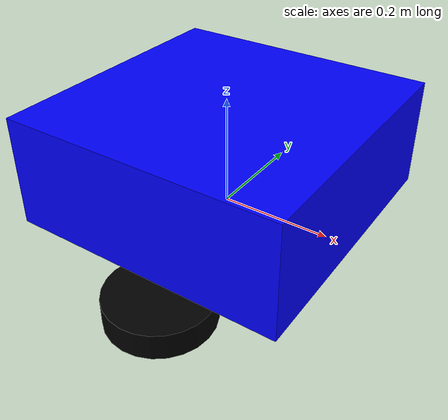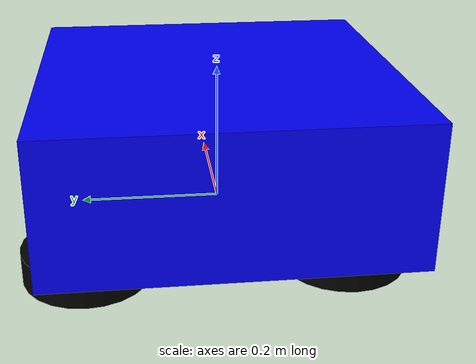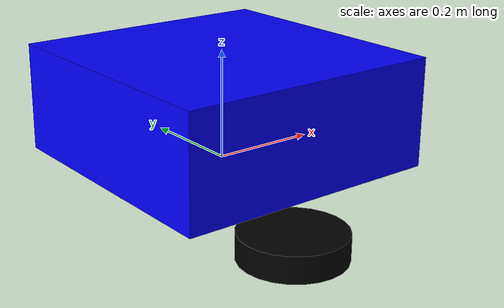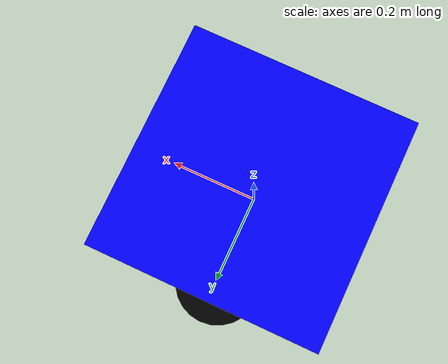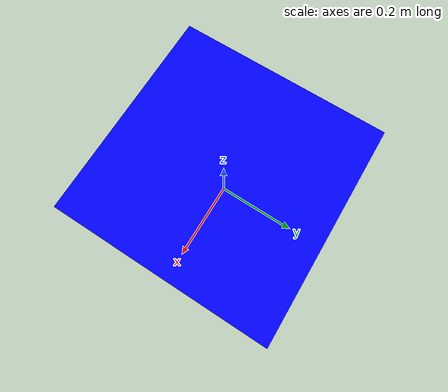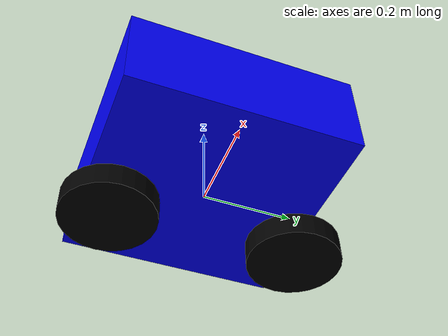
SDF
<?xml version="1.0" ?>
<sdf version="1.10">
  <model name="basic_robot">
    <link name="base_link">
      <pose>0 0 0.1 0 0 0</pose>
      <inertial>
        <mass>1.0</mass>
        <inertia>
          <ixx>0.01</ixx>
          <ixy>0</ixy>
          <ixz>0</ixz>
          <iyy>0.01</iyy>
          <iyz>0</iyz>
          <izz>0.01</izz>
        </inertia>
      </inertial>

      <visual name="base_visual">
        <geometry>
          <box>
            <size>0.5 0.5 0.2</size>
          </box>
        </geometry>
        <material>
          <ambient>0.0 0.0 1.0 1.0</ambient>
          <diffuse>0.0 0.0 1.0 1.0</diffuse>
          <specular>0.0 0.0 1.0 1.0</specular>
        </material>
      </visual>

      <collision name="base_collision">
        <geometry>
          <box>
            <size>0.5 0.5 0.2</size>
          </box>
        </geometry>
      </collision>
    </link>

    <link name="right_wheel">
      <pose>0 -0.2 -0.1 0 0 0</pose>
      <inertial>
        <mass>0.2</mass>
        <inertia>
          <ixx>0.001</ixx>
          <ixy>0</ixy>
          <ixz>0</ixz>
          <iyy>0.001</iyy>
          <iyz>0</iyz>
          <izz>0.001</izz>
        </inertia>
      </inertial>

      <visual name="right_wheel_visual">
        <geometry>
          <cylinder>
            <radius>0.1</radius>
            <length>0.05</length>
          </cylinder>
        </geometry>
        <material>
          <ambient>0.0 0.0 0.0 1.0</ambient>
          <diffuse>0.0 0.0 0.0 1.0</diffuse>
          <specular>0.0 0.0 0.0 1.0</specular>
        </material>
      </visual>

      <collision name="right_wheel_collision">
        <geometry>
          <cylinder>
            <radius>0.1</radius>
            <length>0.05</length>
          </cylinder>
        </geometry>
      </collision>
    </link>

    <link name="left_wheel">
      <pose>0 0.2 -0.1 0 0 0</pose>
      <inertial>
        <mass>0.2</mass>
        <inertia>
          <ixx>0.001</ixx>
          <ixy>0</ixy>
          <ixz>0</ixz>
          <iyy>0.001</iyy>
          <iyz>0</iyz>
          <izz>0.001</izz>
        </inertia>
      </inertial>

      <visual name="left_wheel_visual">
        <geometry>
          <cylinder>
            <radius>0.1</radius>
            <length>0.05</length>
          </cylinder>
        </geometry>
        <material>
          <ambient>0.0 0.0 0.0 1.0</ambient>
          <diffuse>0.0 0.0 0.0 1.0</diffuse>
          <specular>0.0 0.0 0.0 1.0</specular>
        </material>
      </visual>

      <collision name="left_wheel_collision">
        <geometry>
          <cylinder>
            <radius>0.1</radius>
            <length>0.05</length>
          </cylinder>
        </geometry>
      </collision>
    </link>

    <joint name="right_wheel_joint" type="revolute">
      <parent>base_link</parent>
      <child>right_wheel</child>
      <axis>
        <xyz>0 0 1</xyz>
      </axis>
    </joint>

    <joint name="left_wheel_joint" type="revolute">
      <parent>base_link</parent>
      <child>left_wheel</child>
      <axis>
        <xyz>0 0 1</xyz>
      </axis>
    </joint>
  </model>
</sdf>
